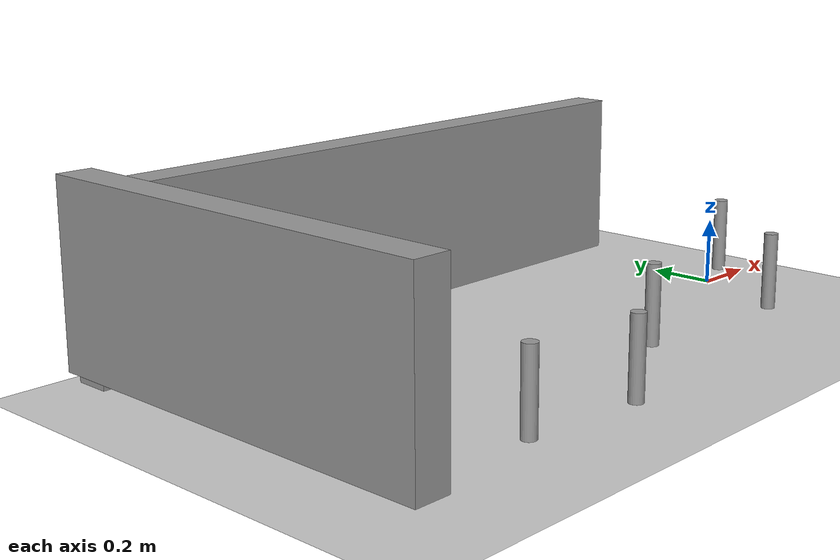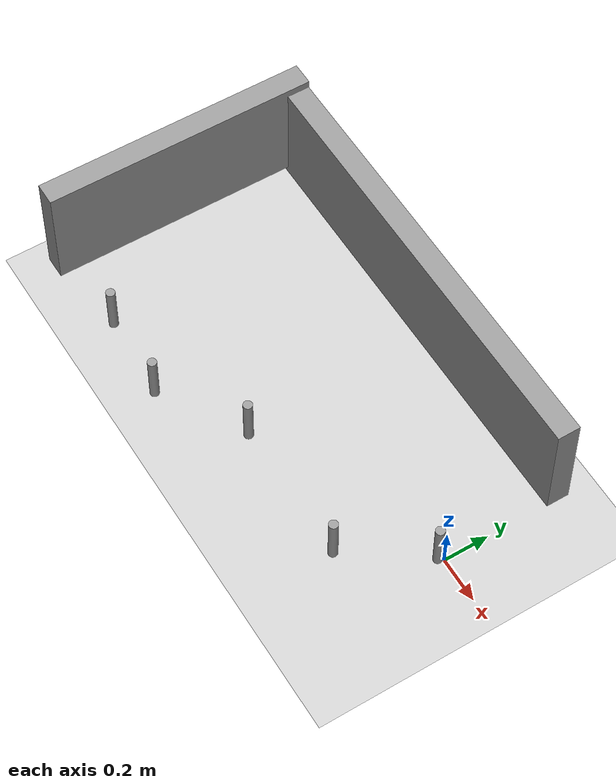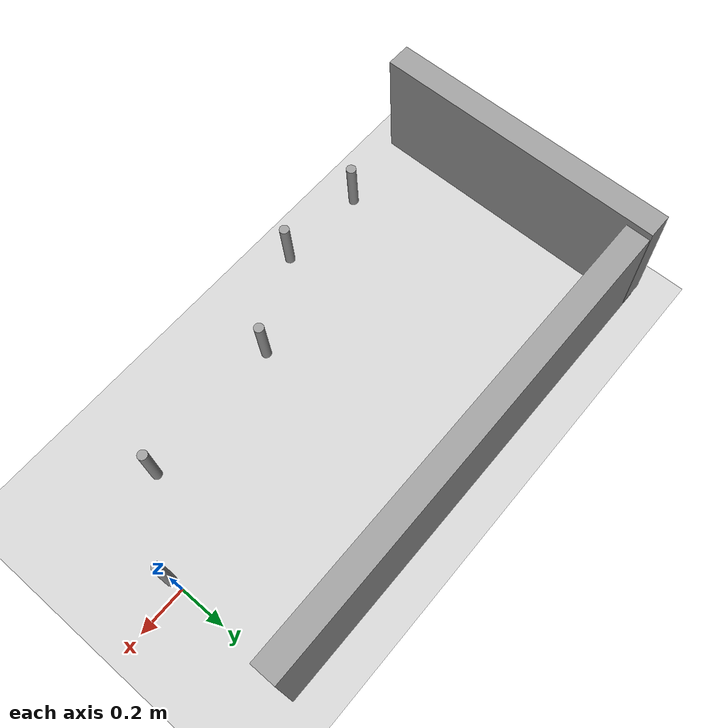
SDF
<sdf version="1.7">
 <world name="default">
  <scene><ambient>0.4 0.4 0.4 1</ambient><background>0.7 0.7 0.7 1</background><shadows>1</shadows></scene>
  <light name="sun" type="directional">
   <pose>0 0 10 0 -0 0</pose>
   <diffuse>0.8 0.8 0.8 1</diffuse>
   <specular>0.2 0.2 0.2 1</specular>
   <attenuation>
    <range>1000</range>
    <constant>0.9</constant>
    <linear>0.01</linear>
    <quadratic>0.001</quadratic>
   </attenuation>
   <direction>-0.5 0.1 -0.9</direction>
   <spot><inner_angle>0</inner_angle><outer_angle>0</outer_angle><falloff>0</falloff></spot>
  </light>
  <model name="ground_plane">
   <static>1</static>
   <link name="link">
    <collision name="collision">
     <geometry><plane><normal>0 0 1</normal><size>100 100</size></plane></geometry>
     <surface><friction><ode><mu>100</mu><mu2>50</mu2></ode></friction></surface>
    </collision>
    <visual name="visual">
     <cast_shadows>0</cast_shadows>
     <geometry><plane><normal>0 0 1</normal><size>100 100</size></plane></geometry>
     <material>
      <script><uri>file://media/materials/scripts/gazebo.material</uri><name>Gazebo/Grey</name></script>
     </material>
    </visual>
   </link>
  </model>
  <physics type="ode">
   <real_time_update_rate>1000</real_time_update_rate>
   <max_step_size>0.001</max_step_size>
   <real_time_factor>1</real_time_factor>
   <ode>
    <solver>
     <type>quick</type>
     <iters>150</iters>
     <precon_iters>0</precon_iters>
     <sor>1.4</sor>
     <use_dynamic_moi_rescaling>1</use_dynamic_moi_rescaling>
    </solver>
    <constraints>
     <cfm>1e-05</cfm>
     <erp>0.2</erp>
     <contact_max_correcting_vel>2000</contact_max_correcting_vel>
     <contact_surface_layer>0.01</contact_surface_layer>
    </constraints>
   </ode>
  </physics>
  <gravity>0 0 -9.8</gravity>
  <magnetic_field>6e-06 2.3e-05 -4.2e-05</magnetic_field>
  <atmosphere type="adiabatic"/>
  <spherical_coordinates>
   <surface_model>EARTH_WGS84</surface_model>
   <latitude_deg>0</latitude_deg>
   <longitude_deg>0</longitude_deg>
   <elevation>0</elevation>
   <heading_deg>0</heading_deg>
  </spherical_coordinates>
  <model name="builder_world_0">
   <link name="link_1">
    <inertial>
     <mass>1</mass>
     <inertia>
      <ixx>0.166667</ixx>
      <ixy>0</ixy>
      <ixz>0</ixz>
      <iyy>0.166667</iyy>
      <iyz>0</iyz>
      <izz>0.166667</izz>
     </inertia>
    </inertial>
    <pose>-3.65962 1.3738 1.14336 0 -0 0</pose>
    <visual name="visual">
     <geometry><box><size>2 0.1 0.5</size></box></geometry>
     <material>
      <lighting>1</lighting>
      <script><uri>file://media/materials/scripts/gazebo.material</uri><name>Gazebo/Grey</name></script>
      <shader type="pixel"><normal_map>__default__</normal_map></shader>
      <ambient>0.3 0.3 0.3 1</ambient>
      <diffuse>0.7 0.7 0.7 1</diffuse>
      <specular>0.01 0.01 0.01 1</specular>
      <emissive>0 0 0 1</emissive>
     </material>
    </visual>
    <collision name="collision">
     <geometry><box><size>2 0.1 0.5</size></box></geometry>
     <surface>
      <friction>
       <ode><mu>1</mu><mu2>1</mu2><fdir1>0 0 0</fdir1><slip1>0</slip1><slip2>0</slip2></ode>
       <torsional>
        <coefficient>1</coefficient>
        <patch_radius>0</patch_radius>
        <surface_radius>0</surface_radius>
        <use_patch_radius>1</use_patch_radius>
        <ode><slip>0</slip></ode>
       </torsional>
      </friction>
      <bounce><restitution_coefficient>0</restitution_coefficient><threshold>1e+06</threshold></bounce>
      <contact>
       <collide_without_contact>0</collide_without_contact>
       <collide_without_contact_bitmask>1</collide_without_contact_bitmask>
       <collide_bitmask>1</collide_bitmask>
       <ode>
        <soft_cfm>0</soft_cfm>
        <soft_erp>0.2</soft_erp>
        <kp>1e+13</kp>
        <kd>1</kd>
        <max_vel>0.01</max_vel>
        <min_depth>0</min_depth>
       </ode>
       <bullet>
        <split_impulse>1</split_impulse>
        <split_impulse_penetration_threshold>-0.01</split_impulse_penetration_threshold>
        <soft_cfm>0</soft_cfm>
        <soft_erp>0.2</soft_erp>
        <kp>1e+13</kp>
        <kd>1</kd>
       </bullet>
      </contact>
     </surface>
    </collision>
   </link>
   <link name="link_1_clone">
    <inertial>
     <mass>1</mass>
     <inertia>
      <ixx>0.166667</ixx>
      <ixy>0</ixy>
      <ixz>0</ixz>
      <iyy>0.166667</iyy>
      <iyz>0</iyz>
      <izz>0.166667</izz>
     </inertia>
    </inertial>
    <pose>-4.64199 0.826294 1.17672 0 0 -1.57618</pose>
    <visual name="visual">
     <geometry><box><size>1.2 0.1 0.5</size></box></geometry>
     <material>
      <lighting>1</lighting>
      <script><uri>file://media/materials/scripts/gazebo.material</uri><name>Gazebo/Grey</name></script>
      <shader type="pixel"><normal_map>__default__</normal_map></shader>
      <ambient>0.3 0.3 0.3 1</ambient>
      <diffuse>0.7 0.7 0.7 1</diffuse>
      <specular>0.01 0.01 0.01 1</specular>
      <emissive>0 0 0 1</emissive>
     </material>
    </visual>
    <collision name="collision">
     <geometry><box><size>1.2 0.1 0.5</size></box></geometry>
     <surface>
      <friction>
       <ode><mu>1</mu><mu2>1</mu2><fdir1>0 0 0</fdir1><slip1>0</slip1><slip2>0</slip2></ode>
       <torsional>
        <coefficient>1</coefficient>
        <patch_radius>0</patch_radius>
        <surface_radius>0</surface_radius>
        <use_patch_radius>1</use_patch_radius>
        <ode><slip>0</slip></ode>
       </torsional>
      </friction>
      <bounce><restitution_coefficient>0</restitution_coefficient><threshold>1e+06</threshold></bounce>
      <contact>
       <collide_without_contact>0</collide_without_contact>
       <collide_without_contact_bitmask>1</collide_without_contact_bitmask>
       <collide_bitmask>1</collide_bitmask>
       <ode>
        <soft_cfm>0</soft_cfm>
        <soft_erp>0.2</soft_erp>
        <kp>1e+13</kp>
        <kd>1</kd>
        <max_vel>0.01</max_vel>
        <min_depth>0</min_depth>
       </ode>
       <bullet>
        <split_impulse>1</split_impulse>
        <split_impulse_penetration_threshold>-0.01</split_impulse_penetration_threshold>
        <soft_cfm>0</soft_cfm>
        <soft_erp>0.2</soft_erp>
        <kp>1e+13</kp>
        <kd>1</kd>
       </bullet>
      </contact>
     </surface>
    </collision>
   </link>
   <link name="link_2">
    <inertial>
     <mass>0.000358935</mass>
     <inertia>
      <ixx>1.5254e-06</ixx>
      <ixy>0</ixy>
      <ixz>0</ixz>
      <iyy>1.5254e-06</iyy>
      <iyz>0</iyz>
      <izz>7.21035e-08</izz>
     </inertia>
    </inertial>
    <pose>-2.68281 0.828862 1.0173 0 -0 0</pose>
    <visual name="visual">
     <geometry><cylinder><radius>0.020044</radius><length>0.223142</length></cylinder></geometry>
     <material>
      <lighting>1</lighting>
      <script><uri>file://media/materials/scripts/gazebo.material</uri><name>Gazebo/Grey</name></script>
      <shader type="pixel"/>
     </material>
    </visual>
    <collision name="collision">
     <geometry><cylinder><radius>0.020044</radius><length>0.223142</length></cylinder></geometry>
     <surface>
      <friction>
       <ode><mu>1</mu><mu2>1</mu2><fdir1>0 0 0</fdir1><slip1>0</slip1><slip2>0</slip2></ode>
       <torsional>
        <coefficient>1</coefficient>
        <patch_radius>0</patch_radius>
        <surface_radius>0</surface_radius>
        <use_patch_radius>1</use_patch_radius>
        <ode><slip>0</slip></ode>
       </torsional>
      </friction>
      <bounce><restitution_coefficient>0</restitution_coefficient><threshold>1e+06</threshold></bounce>
      <contact>
       <collide_without_contact>0</collide_without_contact>
       <collide_without_contact_bitmask>1</collide_without_contact_bitmask>
       <collide_bitmask>1</collide_bitmask>
       <ode>
        <soft_cfm>0</soft_cfm>
        <soft_erp>0.2</soft_erp>
        <kp>1e+13</kp>
        <kd>1</kd>
        <max_vel>0.01</max_vel>
        <min_depth>0</min_depth>
       </ode>
       <bullet>
        <split_impulse>1</split_impulse>
        <split_impulse_penetration_threshold>-0.01</split_impulse_penetration_threshold>
        <soft_cfm>0</soft_cfm>
        <soft_erp>0.2</soft_erp>
        <kp>1e+13</kp>
        <kd>1</kd>
       </bullet>
      </contact>
     </surface>
    </collision>
   </link>
   <link name="link_2_clone">
    <inertial>
     <mass>0.000358935</mass>
     <inertia>
      <ixx>1.5254e-06</ixx>
      <ixy>0</ixy>
      <ixz>0</ixz>
      <iyy>1.5254e-06</iyy>
      <iyz>0</iyz>
      <izz>7.21035e-08</izz>
     </inertia>
    </inertial>
    <pose>-3.52957 0.493421 1.0365 0 -0 0</pose>
    <visual name="visual">
     <geometry><cylinder><radius>0.020044</radius><length>0.223142</length></cylinder></geometry>
     <material>
      <lighting>1</lighting>
      <script><uri>file://media/materials/scripts/gazebo.material</uri><name>Gazebo/Grey</name></script>
      <shader type="pixel"/>
     </material>
    </visual>
    <collision name="collision">
     <geometry><cylinder><radius>0.020044</radius><length>0.223142</length></cylinder></geometry>
     <surface>
      <friction>
       <ode><mu>1</mu><mu2>1</mu2><fdir1>0 0 0</fdir1><slip1>0</slip1><slip2>0</slip2></ode>
       <torsional>
        <coefficient>1</coefficient>
        <patch_radius>0</patch_radius>
        <surface_radius>0</surface_radius>
        <use_patch_radius>1</use_patch_radius>
        <ode><slip>0</slip></ode>
       </torsional>
      </friction>
      <bounce><restitution_coefficient>0</restitution_coefficient><threshold>1e+06</threshold></bounce>
      <contact>
       <collide_without_contact>0</collide_without_contact>
       <collide_without_contact_bitmask>1</collide_without_contact_bitmask>
       <collide_bitmask>1</collide_bitmask>
       <ode>
        <soft_cfm>0</soft_cfm>
        <soft_erp>0.2</soft_erp>
        <kp>1e+13</kp>
        <kd>1</kd>
        <max_vel>0.01</max_vel>
        <min_depth>0</min_depth>
       </ode>
       <bullet>
        <split_impulse>1</split_impulse>
        <split_impulse_penetration_threshold>-0.01</split_impulse_penetration_threshold>
        <soft_cfm>0</soft_cfm>
        <soft_erp>0.2</soft_erp>
        <kp>1e+13</kp>
        <kd>1</kd>
       </bullet>
      </contact>
     </surface>
    </collision>
   </link>
   <link name="link_2_clone_0">
    <inertial>
     <mass>0.000358935</mass>
     <inertia>
      <ixx>1.5254e-06</ixx>
      <ixy>0</ixy>
      <ixz>0</ixz>
      <iyy>1.5254e-06</iyy>
      <iyz>0</iyz>
      <izz>7.21035e-08</izz>
     </inertia>
    </inertial>
    <pose>-2.92234 0.505967 1.0041 0 -0 0</pose>
    <visual name="visual">
     <geometry><cylinder><radius>0.020044</radius><length>0.223142</length></cylinder></geometry>
     <material>
      <lighting>1</lighting>
      <script><uri>file://media/materials/scripts/gazebo.material</uri><name>Gazebo/Grey</name></script>
      <shader type="pixel"/>
     </material>
    </visual>
    <collision name="collision">
     <geometry><cylinder><radius>0.020044</radius><length>0.223142</length></cylinder></geometry>
     <surface>
      <friction>
       <ode><mu>1</mu><mu2>1</mu2><fdir1>0 0 0</fdir1><slip1>0</slip1><slip2>0</slip2></ode>
       <torsional>
        <coefficient>1</coefficient>
        <patch_radius>0</patch_radius>
        <surface_radius>0</surface_radius>
        <use_patch_radius>1</use_patch_radius>
        <ode><slip>0</slip></ode>
       </torsional>
      </friction>
      <bounce><restitution_coefficient>0</restitution_coefficient><threshold>1e+06</threshold></bounce>
      <contact>
       <collide_without_contact>0</collide_without_contact>
       <collide_without_contact_bitmask>1</collide_without_contact_bitmask>
       <collide_bitmask>1</collide_bitmask>
       <ode>
        <soft_cfm>0</soft_cfm>
        <soft_erp>0.2</soft_erp>
        <kp>1e+13</kp>
        <kd>1</kd>
        <max_vel>0.01</max_vel>
        <min_depth>0</min_depth>
       </ode>
       <bullet>
        <split_impulse>1</split_impulse>
        <split_impulse_penetration_threshold>-0.01</split_impulse_penetration_threshold>
        <soft_cfm>0</soft_cfm>
        <soft_erp>0.2</soft_erp>
        <kp>1e+13</kp>
        <kd>1</kd>
       </bullet>
      </contact>
     </surface>
    </collision>
   </link>
   <link name="link_2_clone_1">
    <inertial>
     <mass>0.000358935</mass>
     <inertia>
      <ixx>1.5254e-06</ixx>
      <ixy>0</ixy>
      <ixz>0</ixz>
      <iyy>1.5254e-06</iyy>
      <iyz>0</iyz>
      <izz>7.21035e-08</izz>
     </inertia>
    </inertial>
    <pose>-4.26939 0.295868 1.04113 0 -0 0</pose>
    <visual name="visual">
     <geometry><cylinder><radius>0.020044</radius><length>0.223142</length></cylinder></geometry>
     <material>
      <lighting>1</lighting>
      <script><uri>file://media/materials/scripts/gazebo.material</uri><name>Gazebo/Grey</name></script>
      <shader type="pixel"/>
     </material>
    </visual>
    <collision name="collision">
     <geometry><cylinder><radius>0.020044</radius><length>0.223142</length></cylinder></geometry>
     <surface>
      <friction>
       <ode><mu>1</mu><mu2>1</mu2><fdir1>0 0 0</fdir1><slip1>0</slip1><slip2>0</slip2></ode>
       <torsional>
        <coefficient>1</coefficient>
        <patch_radius>0</patch_radius>
        <surface_radius>0</surface_radius>
        <use_patch_radius>1</use_patch_radius>
        <ode><slip>0</slip></ode>
       </torsional>
      </friction>
      <bounce><restitution_coefficient>0</restitution_coefficient><threshold>1e+06</threshold></bounce>
      <contact>
       <collide_without_contact>0</collide_without_contact>
       <collide_without_contact_bitmask>1</collide_without_contact_bitmask>
       <collide_bitmask>1</collide_bitmask>
       <ode>
        <soft_cfm>0</soft_cfm>
        <soft_erp>0.2</soft_erp>
        <kp>1e+13</kp>
        <kd>1</kd>
        <max_vel>0.01</max_vel>
        <min_depth>0</min_depth>
       </ode>
       <bullet>
        <split_impulse>1</split_impulse>
        <split_impulse_penetration_threshold>-0.01</split_impulse_penetration_threshold>
        <soft_cfm>0</soft_cfm>
        <soft_erp>0.2</soft_erp>
        <kp>1e+13</kp>
        <kd>1</kd>
       </bullet>
      </contact>
     </surface>
    </collision>
   </link>
   <link name="link_2_clone_1_clone">
    <inertial>
     <mass>0.000358935</mass>
     <inertia>
      <ixx>1.5254e-06</ixx>
      <ixy>0</ixy>
      <ixz>0</ixz>
      <iyy>1.5254e-06</iyy>
      <iyz>0</iyz>
      <izz>7.21035e-08</izz>
     </inertia>
    </inertial>
    <pose>-3.89965 0.276645 1.0302 0 -0 0</pose>
    <visual name="visual">
     <geometry><cylinder><radius>0.020044</radius><length>0.223142</length></cylinder></geometry>
     <material>
      <lighting>1</lighting>
      <script><uri>file://media/materials/scripts/gazebo.material</uri><name>Gazebo/Grey</name></script>
      <shader type="pixel"/>
     </material>
    </visual>
    <collision name="collision">
     <geometry><cylinder><radius>0.020044</radius><length>0.223142</length></cylinder></geometry>
     <surface>
      <friction>
       <ode><mu>1</mu><mu2>1</mu2><fdir1>0 0 0</fdir1><slip1>0</slip1><slip2>0</slip2></ode>
       <torsional>
        <coefficient>1</coefficient>
        <patch_radius>0</patch_radius>
        <surface_radius>0</surface_radius>
        <use_patch_radius>1</use_patch_radius>
        <ode><slip>0</slip></ode>
       </torsional>
      </friction>
      <bounce><restitution_coefficient>0</restitution_coefficient><threshold>1e+06</threshold></bounce>
      <contact>
       <collide_without_contact>0</collide_without_contact>
       <collide_without_contact_bitmask>1</collide_without_contact_bitmask>
       <collide_bitmask>1</collide_bitmask>
       <ode>
        <soft_cfm>0</soft_cfm>
        <soft_erp>0.2</soft_erp>
        <kp>1e+13</kp>
        <kd>1</kd>
        <max_vel>0.01</max_vel>
        <min_depth>0</min_depth>
       </ode>
       <bullet>
        <split_impulse>1</split_impulse>
        <split_impulse_penetration_threshold>-0.01</split_impulse_penetration_threshold>
        <soft_cfm>0</soft_cfm>
        <soft_erp>0.2</soft_erp>
        <kp>1e+13</kp>
        <kd>1</kd>
       </bullet>
      </contact>
     </surface>
    </collision>
   </link>
   <static>1</static>
   <pose>2.68575 -0.865413 -0.856266 0 -0 0</pose>
  </model>
 </world>
</sdf>
